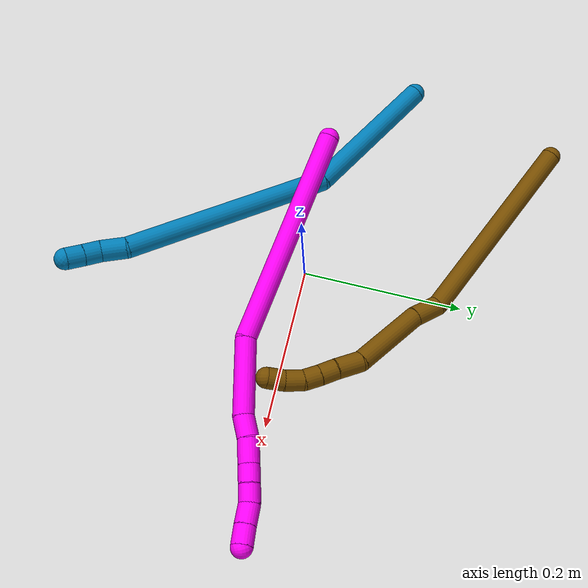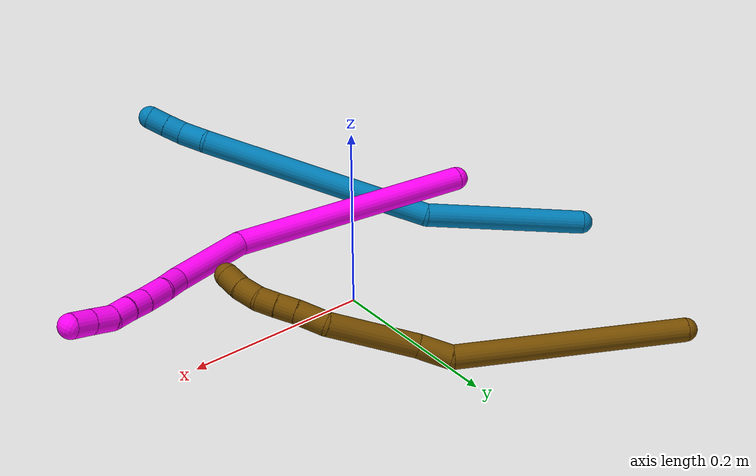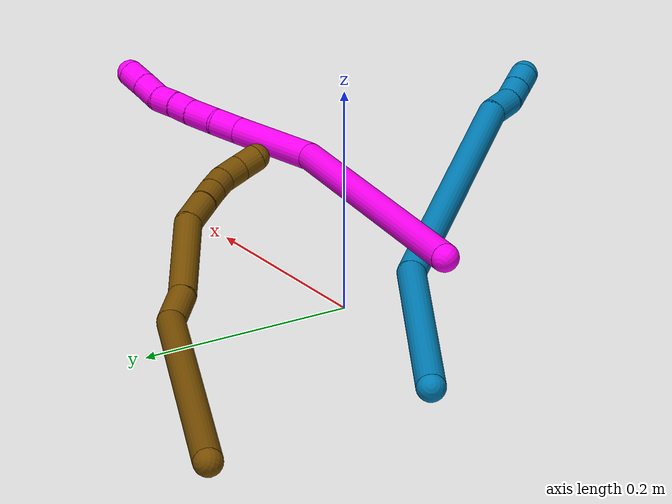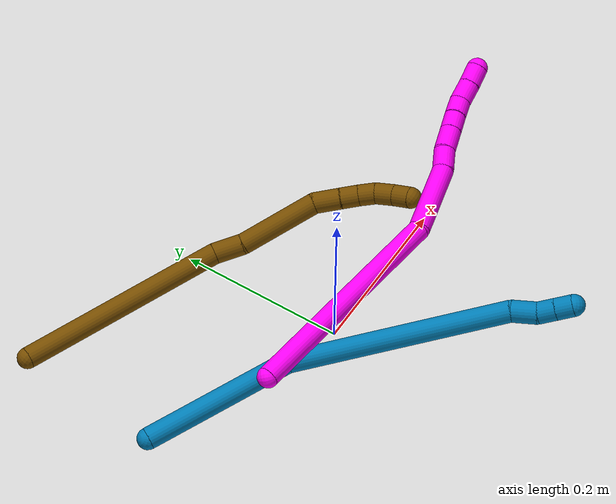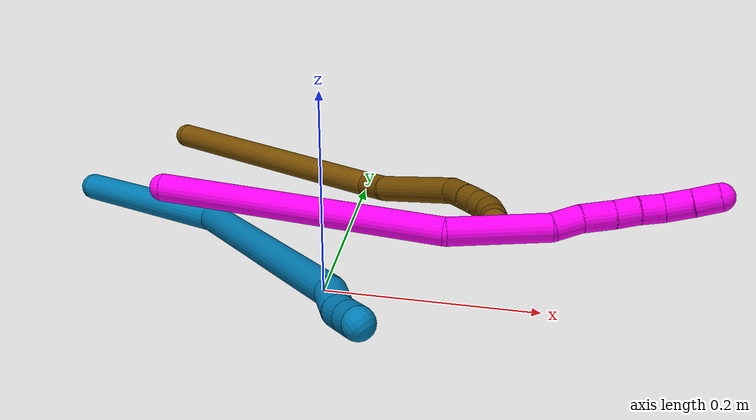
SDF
<sdf version="1.7">
 <world name="default">
  <model name="9">
   <static>0</static>
   <link name="9">
    <collision name="collision-cylinder-e_1_1_4">
     <pose>0.035838 -0.0498 0.063419 0.665681 0.418232 0.146466</pose>
     <geometry><cylinder><radius>0.0125</radius><length>0.17648</length></cylinder></geometry>
     <surface>
      <friction><ode><mu>1.16</mu><mu2>1.16</mu2><slip1>0</slip1><slip2>0</slip2></ode></friction>
      <contact><ode><kp>1e+06</kp><kd>1</kd><max_vel>0</max_vel><min_depth>0.001</min_depth></ode></contact>
     </surface>
    </collision>
    <visual name="visual-cylinder-e_1_1_4">
     <pose>0.035838 -0.0498 0.063419 0.665681 0.418232 0.146466</pose>
     <geometry><cylinder><radius>0.0125</radius><length>0.17648</length></cylinder></geometry>
     <material><ambient>0 0.490196 0.709804 1</ambient></material>
    </visual>
    <collision name="collision-cylinder-e_2_4_5">
     <pose>0.161095 -0.141953 0.205776 0.492457 0.784478 0.207192</pose>
     <geometry><cylinder><radius>0.0125</radius><length>0.253145</length></cylinder></geometry>
     <surface>
      <friction><ode><mu>1.16</mu><mu2>1.16</mu2><slip1>0</slip1><slip2>0</slip2></ode></friction>
      <contact><ode><kp>1e+06</kp><kd>1</kd><max_vel>0</max_vel><min_depth>0.001</min_depth></ode></contact>
     </surface>
    </collision>
    <visual name="visual-cylinder-e_2_4_5">
     <pose>0.161095 -0.141953 0.205776 0.492457 0.784478 0.207192</pose>
     <geometry><cylinder><radius>0.0125</radius><length>0.253145</length></cylinder></geometry>
     <material><ambient>0 0.490196 0.709804 1</ambient></material>
    </visual>
    <collision name="collision-cylinder-e_3_5_6">
     <pose>0.261885 -0.184846 0.294121 0.057186 0.878847 0.026888</pose>
     <geometry><cylinder><radius>0.0125</radius><length>0.029537</length></cylinder></geometry>
     <surface>
      <friction><ode><mu>1.16</mu><mu2>1.16</mu2><slip1>0</slip1><slip2>0</slip2></ode></friction>
      <contact><ode><kp>1e+06</kp><kd>1</kd><max_vel>0</max_vel><min_depth>0.001</min_depth></ode></contact>
     </surface>
    </collision>
    <visual name="visual-cylinder-e_3_5_6">
     <pose>0.261885 -0.184846 0.294121 0.057186 0.878847 0.026888</pose>
     <geometry><cylinder><radius>0.0125</radius><length>0.029537</length></cylinder></geometry>
     <material><ambient>0 0.490196 0.709804 1</ambient></material>
    </visual>
    <collision name="collision-cylinder-e_4_6_7">
     <pose>0.281253 -0.188642 0.309024 0.535181 0.896753 0.262264</pose>
     <geometry><cylinder><radius>0.0125</radius><length>0.02047</length></cylinder></geometry>
     <surface>
      <friction><ode><mu>1.16</mu><mu2>1.16</mu2><slip1>0</slip1><slip2>0</slip2></ode></friction>
      <contact><ode><kp>1e+06</kp><kd>1</kd><max_vel>0</max_vel><min_depth>0.001</min_depth></ode></contact>
     </surface>
    </collision>
    <visual name="visual-cylinder-e_4_6_7">
     <pose>0.281253 -0.188642 0.309024 0.535181 0.896753 0.262264</pose>
     <geometry><cylinder><radius>0.0125</radius><length>0.02047</length></cylinder></geometry>
     <material><ambient>0 0.490196 0.709804 1</ambient></material>
    </visual>
    <collision name="collision-cylinder-e_5_7_2">
     <pose>0.297365 -0.195121 0.319759 0.551082 0.922204 0.27911</pose>
     <geometry><cylinder><radius>0.0125</radius><length>0.020367</length></cylinder></geometry>
     <surface>
      <friction><ode><mu>1.16</mu><mu2>1.16</mu2><slip1>0</slip1><slip2>0</slip2></ode></friction>
      <contact><ode><kp>1e+06</kp><kd>1</kd><max_vel>0</max_vel><min_depth>0.001</min_depth></ode></contact>
     </surface>
    </collision>
    <visual name="visual-cylinder-e_5_7_2">
     <pose>0.297365 -0.195121 0.319759 0.551082 0.922204 0.27911</pose>
     <geometry><cylinder><radius>0.0125</radius><length>0.020367</length></cylinder></geometry>
     <material><ambient>0 0.490196 0.709804 1</ambient></material>
    </visual>
    <collision name="collision-sphere-2">
     <pose>0.305481 -0.198342 0.325 0 -0 0</pose>
     <geometry><sphere><radius>0.0125</radius></sphere></geometry>
     <surface>
      <friction><ode><mu>1.16</mu><mu2>1.16</mu2><slip1>0</slip1><slip2>0</slip2></ode></friction>
      <contact><ode><kp>1e+06</kp><kd>1</kd><max_vel>0</max_vel><min_depth>0.001</min_depth></ode></contact>
     </surface>
    </collision>
    <visual name="visual-sphere-2">
     <pose>0.305481 -0.198342 0.325 0 -0 0</pose>
     <geometry><sphere><radius>0.0125</radius></sphere></geometry>
     <material><ambient>0 0.490196 0.709804 1</ambient></material>
    </visual>
    <collision name="collision-sphere-7">
     <pose>0.28925 -0.1919 0.314519 0 -0 0</pose>
     <geometry><sphere><radius>0.0125</radius></sphere></geometry>
     <surface>
      <friction><ode><mu>1.16</mu><mu2>1.16</mu2><slip1>0</slip1><slip2>0</slip2></ode></friction>
      <contact><ode><kp>1e+06</kp><kd>1</kd><max_vel>0</max_vel><min_depth>0.001</min_depth></ode></contact>
     </surface>
    </collision>
    <visual name="visual-sphere-7">
     <pose>0.28925 -0.1919 0.314519 0 -0 0</pose>
     <geometry><sphere><radius>0.0125</radius></sphere></geometry>
     <material><ambient>0 0.490196 0.709804 1</ambient></material>
    </visual>
    <collision name="collision-sphere-6">
     <pose>0.273256 -0.185384 0.303529 0 -0 0</pose>
     <geometry><sphere><radius>0.0125</radius></sphere></geometry>
     <surface>
      <friction><ode><mu>1.16</mu><mu2>1.16</mu2><slip1>0</slip1><slip2>0</slip2></ode></friction>
      <contact><ode><kp>1e+06</kp><kd>1</kd><max_vel>0</max_vel><min_depth>0.001</min_depth></ode></contact>
     </surface>
    </collision>
    <visual name="visual-sphere-6">
     <pose>0.273256 -0.185384 0.303529 0 -0 0</pose>
     <geometry><sphere><radius>0.0125</radius></sphere></geometry>
     <material><ambient>0 0.490196 0.709804 1</ambient></material>
    </visual>
    <collision name="collision-sphere-5">
     <pose>0.250513 -0.184307 0.284714 0 -0 0</pose>
     <geometry><sphere><radius>0.0125</radius></sphere></geometry>
     <surface>
      <friction><ode><mu>1.16</mu><mu2>1.16</mu2><slip1>0</slip1><slip2>0</slip2></ode></friction>
      <contact><ode><kp>1e+06</kp><kd>1</kd><max_vel>0</max_vel><min_depth>0.001</min_depth></ode></contact>
     </surface>
    </collision>
    <visual name="visual-sphere-5">
     <pose>0.250513 -0.184307 0.284714 0 -0 0</pose>
     <geometry><sphere><radius>0.0125</radius></sphere></geometry>
     <material><ambient>0 0.490196 0.709804 1</ambient></material>
    </visual>
    <collision name="collision-sphere-1">
     <geometry><sphere><radius>0.0125</radius></sphere></geometry>
     <surface>
      <friction><ode><mu>1.16</mu><mu2>1.16</mu2><slip1>0</slip1><slip2>0</slip2></ode></friction>
      <contact><ode><kp>1e+06</kp><kd>1</kd><max_vel>0</max_vel><min_depth>0.001</min_depth></ode></contact>
     </surface>
    </collision>
    <visual name="visual-sphere-1">
     <geometry><sphere><radius>0.0125</radius></sphere></geometry>
     <material><ambient>0 0.490196 0.709804 1</ambient></material>
    </visual>
    <collision name="collision-sphere-4">
     <pose>0.071677 -0.099599 0.126838 0 -0 0</pose>
     <geometry><sphere><radius>0.0125</radius></sphere></geometry>
     <surface>
      <friction><ode><mu>1.16</mu><mu2>1.16</mu2><slip1>0</slip1><slip2>0</slip2></ode></friction>
      <contact><ode><kp>1e+06</kp><kd>1</kd><max_vel>0</max_vel><min_depth>0.001</min_depth></ode></contact>
     </surface>
    </collision>
    <visual name="visual-sphere-4">
     <pose>0.071677 -0.099599 0.126838 0 -0 0</pose>
     <geometry><sphere><radius>0.0125</radius></sphere></geometry>
     <material><ambient>0 0.490196 0.709804 1</ambient></material>
    </visual>
    <inertial>
     <pose>0.133308 -0.116038 0.169618 0 -0 0</pose>
     <mass>0.5</mass>
     <inertia>
      <ixx>0.001652</ixx>
      <ixy>0</ixy>
      <ixz>0</ixz>
      <iyy>0.001898</iyy>
      <iyz>0</iyz>
      <izz>-0.000411</izz>
     </inertia>
    </inertial>
   </link>
   <pose>-0.253956 0.082807 0.040582 -2.33551 -0.599141 -1.67406</pose>
  </model>
  <model name="10">
   <static>0</static>
   <link name="10">
    <collision name="collision-cylinder-e_1_1_4">
     <pose>0.10039 0.033776 0.07878 -0.405033 0.86409 -0.188793</pose>
     <geometry><cylinder><radius>0.0125</radius><length>0.26401</length></cylinder></geometry>
     <surface>
      <friction><ode><mu>1.16</mu><mu2>1.16</mu2><slip1>0</slip1><slip2>0</slip2></ode></friction>
      <contact><ode><kp>1e+06</kp><kd>1</kd><max_vel>0</max_vel><min_depth>0.001</min_depth></ode></contact>
     </surface>
    </collision>
    <visual name="visual-cylinder-e_1_1_4">
     <pose>0.10039 0.033776 0.07878 -0.405033 0.86409 -0.188793</pose>
     <geometry><cylinder><radius>0.0125</radius><length>0.26401</length></cylinder></geometry>
     <material><ambient>1 0 0.964706 1</ambient></material>
    </visual>
    <collision name="collision-cylinder-e_2_4_5">
     <pose>0.238549 0.087738 0.17132 -0.972476 0.996646 -0.560097</pose>
     <geometry><cylinder><radius>0.0125</radius><length>0.08996</length></cylinder></geometry>
     <surface>
      <friction><ode><mu>1.16</mu><mu2>1.16</mu2><slip1>0</slip1><slip2>0</slip2></ode></friction>
      <contact><ode><kp>1e+06</kp><kd>1</kd><max_vel>0</max_vel><min_depth>0.001</min_depth></ode></contact>
     </surface>
    </collision>
    <visual name="visual-cylinder-e_2_4_5">
     <pose>0.238549 0.087738 0.17132 -0.972476 0.996646 -0.560097</pose>
     <geometry><cylinder><radius>0.0125</radius><length>0.08996</length></cylinder></geometry>
     <material><ambient>1 0 0.964706 1</ambient></material>
    </visual>
    <collision name="collision-cylinder-e_3_5_6">
     <pose>0.286253 0.116479 0.186755 -1.37746 0.850633 -0.713828</pose>
     <geometry><cylinder><radius>0.0125</radius><length>0.026438</length></cylinder></geometry>
     <surface>
      <friction><ode><mu>1.16</mu><mu2>1.16</mu2><slip1>0</slip1><slip2>0</slip2></ode></friction>
      <contact><ode><kp>1e+06</kp><kd>1</kd><max_vel>0</max_vel><min_depth>0.001</min_depth></ode></contact>
     </surface>
    </collision>
    <visual name="visual-cylinder-e_3_5_6">
     <pose>0.286253 0.116479 0.186755 -1.37746 0.850633 -0.713828</pose>
     <geometry><cylinder><radius>0.0125</radius><length>0.026438</length></cylinder></geometry>
     <material><ambient>1 0 0.964706 1</ambient></material>
    </visual>
    <collision name="collision-cylinder-e_4_6_7">
     <pose>0.307979 0.132519 0.192281 -1.09559 0.950812 -0.608607</pose>
     <geometry><cylinder><radius>0.0125</radius><length>0.028972</length></cylinder></geometry>
     <surface>
      <friction><ode><mu>1.16</mu><mu2>1.16</mu2><slip1>0</slip1><slip2>0</slip2></ode></friction>
      <contact><ode><kp>1e+06</kp><kd>1</kd><max_vel>0</max_vel><min_depth>0.001</min_depth></ode></contact>
     </surface>
    </collision>
    <visual name="visual-cylinder-e_4_6_7">
     <pose>0.307979 0.132519 0.192281 -1.09559 0.950812 -0.608607</pose>
     <geometry><cylinder><radius>0.0125</radius><length>0.028972</length></cylinder></geometry>
     <material><ambient>1 0 0.964706 1</ambient></material>
    </visual>
    <collision name="collision-cylinder-e_5_7_8">
     <pose>0.328001 0.145935 0.199193 -1.0944 0.889363 -0.565105</pose>
     <geometry><cylinder><radius>0.0125</radius><length>0.021196</length></cylinder></geometry>
     <surface>
      <friction><ode><mu>1.16</mu><mu2>1.16</mu2><slip1>0</slip1><slip2>0</slip2></ode></friction>
      <contact><ode><kp>1e+06</kp><kd>1</kd><max_vel>0</max_vel><min_depth>0.001</min_depth></ode></contact>
     </surface>
    </collision>
    <visual name="visual-cylinder-e_5_7_8">
     <pose>0.328001 0.145935 0.199193 -1.0944 0.889363 -0.565105</pose>
     <geometry><cylinder><radius>0.0125</radius><length>0.021196</length></cylinder></geometry>
     <material><ambient>1 0 0.964706 1</ambient></material>
    </visual>
    <collision name="collision-cylinder-e_6_8_9">
     <pose>0.345165 0.157283 0.20533 -1.05427 0.961968 -0.589813</pose>
     <geometry><cylinder><radius>0.0125</radius><length>0.021779</length></cylinder></geometry>
     <surface>
      <friction><ode><mu>1.16</mu><mu2>1.16</mu2><slip1>0</slip1><slip2>0</slip2></ode></friction>
      <contact><ode><kp>1e+06</kp><kd>1</kd><max_vel>0</max_vel><min_depth>0.001</min_depth></ode></contact>
     </surface>
    </collision>
    <visual name="visual-cylinder-e_6_8_9">
     <pose>0.345165 0.157283 0.20533 -1.05427 0.961968 -0.589813</pose>
     <geometry><cylinder><radius>0.0125</radius><length>0.021779</length></cylinder></geometry>
     <material><ambient>1 0 0.964706 1</ambient></material>
    </visual>
    <collision name="collision-cylinder-e_7_9_10">
     <pose>0.362258 0.169533 0.214658 -0.829846 0.72218 -0.329686</pose>
     <geometry><cylinder><radius>0.0125</radius><length>0.02469</length></cylinder></geometry>
     <surface>
      <friction><ode><mu>1.16</mu><mu2>1.16</mu2><slip1>0</slip1><slip2>0</slip2></ode></friction>
      <contact><ode><kp>1e+06</kp><kd>1</kd><max_vel>0</max_vel><min_depth>0.001</min_depth></ode></contact>
     </surface>
    </collision>
    <visual name="visual-cylinder-e_7_9_10">
     <pose>0.362258 0.169533 0.214658 -0.829846 0.72218 -0.329686</pose>
     <geometry><cylinder><radius>0.0125</radius><length>0.02469</length></cylinder></geometry>
     <material><ambient>1 0 0.964706 1</ambient></material>
    </visual>
    <collision name="collision-cylinder-e_8_10_2">
     <pose>0.378018 0.183067 0.226304 -0.892986 0.7237 -0.358529</pose>
     <geometry><cylinder><radius>0.0125</radius><length>0.022955</length></cylinder></geometry>
     <surface>
      <friction><ode><mu>1.16</mu><mu2>1.16</mu2><slip1>0</slip1><slip2>0</slip2></ode></friction>
      <contact><ode><kp>1e+06</kp><kd>1</kd><max_vel>0</max_vel><min_depth>0.001</min_depth></ode></contact>
     </surface>
    </collision>
    <visual name="visual-cylinder-e_8_10_2">
     <pose>0.378018 0.183067 0.226304 -0.892986 0.7237 -0.358529</pose>
     <geometry><cylinder><radius>0.0125</radius><length>0.022955</length></cylinder></geometry>
     <material><ambient>1 0 0.964706 1</ambient></material>
    </visual>
    <collision name="collision-sphere-2">
     <pose>0.385618 0.189767 0.231698 0 -0 0</pose>
     <geometry><sphere><radius>0.0125</radius></sphere></geometry>
     <surface>
      <friction><ode><mu>1.16</mu><mu2>1.16</mu2><slip1>0</slip1><slip2>0</slip2></ode></friction>
      <contact><ode><kp>1e+06</kp><kd>1</kd><max_vel>0</max_vel><min_depth>0.001</min_depth></ode></contact>
     </surface>
    </collision>
    <visual name="visual-sphere-2">
     <pose>0.385618 0.189767 0.231698 0 -0 0</pose>
     <geometry><sphere><radius>0.0125</radius></sphere></geometry>
     <material><ambient>1 0 0.964706 1</ambient></material>
    </visual>
    <collision name="collision-sphere-10">
     <pose>0.370418 0.176367 0.220911 0 -0 0</pose>
     <geometry><sphere><radius>0.0125</radius></sphere></geometry>
     <surface>
      <friction><ode><mu>1.16</mu><mu2>1.16</mu2><slip1>0</slip1><slip2>0</slip2></ode></friction>
      <contact><ode><kp>1e+06</kp><kd>1</kd><max_vel>0</max_vel><min_depth>0.001</min_depth></ode></contact>
     </surface>
    </collision>
    <visual name="visual-sphere-10">
     <pose>0.370418 0.176367 0.220911 0 -0 0</pose>
     <geometry><sphere><radius>0.0125</radius></sphere></geometry>
     <material><ambient>1 0 0.964706 1</ambient></material>
    </visual>
    <collision name="collision-sphere-9">
     <pose>0.354098 0.162698 0.208406 0 -0 0</pose>
     <geometry><sphere><radius>0.0125</radius></sphere></geometry>
     <surface>
      <friction><ode><mu>1.16</mu><mu2>1.16</mu2><slip1>0</slip1><slip2>0</slip2></ode></friction>
      <contact><ode><kp>1e+06</kp><kd>1</kd><max_vel>0</max_vel><min_depth>0.001</min_depth></ode></contact>
     </surface>
    </collision>
    <visual name="visual-sphere-9">
     <pose>0.354098 0.162698 0.208406 0 -0 0</pose>
     <geometry><sphere><radius>0.0125</radius></sphere></geometry>
     <material><ambient>1 0 0.964706 1</ambient></material>
    </visual>
    <collision name="collision-sphere-4">
     <pose>0.200781 0.067552 0.15756 0 -0 0</pose>
     <geometry><sphere><radius>0.0125</radius></sphere></geometry>
     <surface>
      <friction><ode><mu>1.16</mu><mu2>1.16</mu2><slip1>0</slip1><slip2>0</slip2></ode></friction>
      <contact><ode><kp>1e+06</kp><kd>1</kd><max_vel>0</max_vel><min_depth>0.001</min_depth></ode></contact>
     </surface>
    </collision>
    <visual name="visual-sphere-4">
     <pose>0.200781 0.067552 0.15756 0 -0 0</pose>
     <geometry><sphere><radius>0.0125</radius></sphere></geometry>
     <material><ambient>1 0 0.964706 1</ambient></material>
    </visual>
    <collision name="collision-sphere-1">
     <geometry><sphere><radius>0.0125</radius></sphere></geometry>
     <surface>
      <friction><ode><mu>1.16</mu><mu2>1.16</mu2><slip1>0</slip1><slip2>0</slip2></ode></friction>
      <contact><ode><kp>1e+06</kp><kd>1</kd><max_vel>0</max_vel><min_depth>0.001</min_depth></ode></contact>
     </surface>
    </collision>
    <visual name="visual-sphere-1">
     <geometry><sphere><radius>0.0125</radius></sphere></geometry>
     <material><ambient>1 0 0.964706 1</ambient></material>
    </visual>
    <collision name="collision-sphere-8">
     <pose>0.336232 0.151868 0.202254 0 -0 0</pose>
     <geometry><sphere><radius>0.0125</radius></sphere></geometry>
     <surface>
      <friction><ode><mu>1.16</mu><mu2>1.16</mu2><slip1>0</slip1><slip2>0</slip2></ode></friction>
      <contact><ode><kp>1e+06</kp><kd>1</kd><max_vel>0</max_vel><min_depth>0.001</min_depth></ode></contact>
     </surface>
    </collision>
    <visual name="visual-sphere-8">
     <pose>0.336232 0.151868 0.202254 0 -0 0</pose>
     <geometry><sphere><radius>0.0125</radius></sphere></geometry>
     <material><ambient>1 0 0.964706 1</ambient></material>
    </visual>
    <collision name="collision-sphere-5">
     <pose>0.276316 0.107924 0.18508 0 -0 0</pose>
     <geometry><sphere><radius>0.0125</radius></sphere></geometry>
     <surface>
      <friction><ode><mu>1.16</mu><mu2>1.16</mu2><slip1>0</slip1><slip2>0</slip2></ode></friction>
      <contact><ode><kp>1e+06</kp><kd>1</kd><max_vel>0</max_vel><min_depth>0.001</min_depth></ode></contact>
     </surface>
    </collision>
    <visual name="visual-sphere-5">
     <pose>0.276316 0.107924 0.18508 0 -0 0</pose>
     <geometry><sphere><radius>0.0125</radius></sphere></geometry>
     <material><ambient>1 0 0.964706 1</ambient></material>
    </visual>
    <collision name="collision-sphere-6">
     <pose>0.296189 0.125034 0.18843 0 -0 0</pose>
     <geometry><sphere><radius>0.0125</radius></sphere></geometry>
     <surface>
      <friction><ode><mu>1.16</mu><mu2>1.16</mu2><slip1>0</slip1><slip2>0</slip2></ode></friction>
      <contact><ode><kp>1e+06</kp><kd>1</kd><max_vel>0</max_vel><min_depth>0.001</min_depth></ode></contact>
     </surface>
    </collision>
    <visual name="visual-sphere-6">
     <pose>0.296189 0.125034 0.18843 0 -0 0</pose>
     <geometry><sphere><radius>0.0125</radius></sphere></geometry>
     <material><ambient>1 0 0.964706 1</ambient></material>
    </visual>
    <collision name="collision-sphere-7">
     <pose>0.31977 0.140003 0.196132 0 -0 0</pose>
     <geometry><sphere><radius>0.0125</radius></sphere></geometry>
     <surface>
      <friction><ode><mu>1.16</mu><mu2>1.16</mu2><slip1>0</slip1><slip2>0</slip2></ode></friction>
      <contact><ode><kp>1e+06</kp><kd>1</kd><max_vel>0</max_vel><min_depth>0.001</min_depth></ode></contact>
     </surface>
    </collision>
    <visual name="visual-sphere-7">
     <pose>0.31977 0.140003 0.196132 0 -0 0</pose>
     <geometry><sphere><radius>0.0125</radius></sphere></geometry>
     <material><ambient>1 0 0.964706 1</ambient></material>
    </visual>
    <inertial>
     <pose>0.193092 0.077271 0.131815 0 -0 0</pose>
     <mass>0.5</mass>
     <inertia>
      <ixx>0.000841</ixx>
      <ixy>0</ixy>
      <ixz>0</ixz>
      <iyy>0.001349</iyy>
      <iyz>0</iyz>
      <izz>-0.001651</izz>
     </inertia>
    </inertial>
   </link>
   <pose>-0.145624 -0.00452 0.09604 1.17395 0.54281 0.337799</pose>
  </model>
  <model name="12">
   <static>0</static>
   <link name="12">
    <collision name="collision-cylinder-e_1_1_4">
     <pose>0.056733 -0.099245 0.053125 1.07932 0.466827 0.282903</pose>
     <geometry><cylinder><radius>0.0125</radius><length>0.252114</length></cylinder></geometry>
     <surface>
      <friction><ode><mu>1.16</mu><mu2>1.16</mu2><slip1>0</slip1><slip2>0</slip2></ode></friction>
      <contact><ode><kp>1e+06</kp><kd>1</kd><max_vel>0</max_vel><min_depth>0.001</min_depth></ode></contact>
     </surface>
    </collision>
    <visual name="visual-cylinder-e_1_1_4">
     <pose>0.056733 -0.099245 0.053125 1.07932 0.466827 0.282903</pose>
     <geometry><cylinder><radius>0.0125</radius><length>0.252114</length></cylinder></geometry>
     <material><ambient>0.466667 0.301961 0 1</ambient></material>
    </visual>
    <collision name="collision-cylinder-e_2_4_5">
     <pose>0.126575 -0.206198 0.115766 0.680779 0.819434 0.305241</pose>
     <geometry><cylinder><radius>0.0125</radius><length>0.03588</length></cylinder></geometry>
     <surface>
      <friction><ode><mu>1.16</mu><mu2>1.16</mu2><slip1>0</slip1><slip2>0</slip2></ode></friction>
      <contact><ode><kp>1e+06</kp><kd>1</kd><max_vel>0</max_vel><min_depth>0.001</min_depth></ode></contact>
     </surface>
    </collision>
    <visual name="visual-cylinder-e_2_4_5">
     <pose>0.126575 -0.206198 0.115766 0.680779 0.819434 0.305241</pose>
     <geometry><cylinder><radius>0.0125</radius><length>0.03588</length></cylinder></geometry>
     <material><ambient>0.466667 0.301961 0 1</ambient></material>
    </visual>
    <collision name="collision-cylinder-e_3_5_6">
     <pose>0.173858 -0.2419 0.143238 1.00049 0.798971 0.453613</pose>
     <geometry><cylinder><radius>0.0125</radius><length>0.095371</length></cylinder></geometry>
     <surface>
      <friction><ode><mu>1.16</mu><mu2>1.16</mu2><slip1>0</slip1><slip2>0</slip2></ode></friction>
      <contact><ode><kp>1e+06</kp><kd>1</kd><max_vel>0</max_vel><min_depth>0.001</min_depth></ode></contact>
     </surface>
    </collision>
    <visual name="visual-cylinder-e_3_5_6">
     <pose>0.173858 -0.2419 0.143238 1.00049 0.798971 0.453613</pose>
     <geometry><cylinder><radius>0.0125</radius><length>0.095371</length></cylinder></geometry>
     <material><ambient>0.466667 0.301961 0 1</ambient></material>
    </visual>
    <collision name="collision-cylinder-e_4_6_7">
     <pose>0.21953 -0.274715 0.171234 0.447574 0.801344 0.192221</pose>
     <geometry><cylinder><radius>0.0125</radius><length>0.032017</length></cylinder></geometry>
     <surface>
      <friction><ode><mu>1.16</mu><mu2>1.16</mu2><slip1>0</slip1><slip2>0</slip2></ode></friction>
      <contact><ode><kp>1e+06</kp><kd>1</kd><max_vel>0</max_vel><min_depth>0.001</min_depth></ode></contact>
     </surface>
    </collision>
    <visual name="visual-cylinder-e_4_6_7">
     <pose>0.21953 -0.274715 0.171234 0.447574 0.801344 0.192221</pose>
     <geometry><cylinder><radius>0.0125</radius><length>0.032017</length></cylinder></geometry>
     <material><ambient>0.466667 0.301961 0 1</ambient></material>
    </visual>
    <collision name="collision-cylinder-e_5_7_8">
     <pose>0.238021 -0.283272 0.188097 0.501157 0.732218 0.195639</pose>
     <geometry><cylinder><radius>0.0125</radius><length>0.020917</length></cylinder></geometry>
     <surface>
      <friction><ode><mu>1.16</mu><mu2>1.16</mu2><slip1>0</slip1><slip2>0</slip2></ode></friction>
      <contact><ode><kp>1e+06</kp><kd>1</kd><max_vel>0</max_vel><min_depth>0.001</min_depth></ode></contact>
     </surface>
    </collision>
    <visual name="visual-cylinder-e_5_7_8">
     <pose>0.238021 -0.283272 0.188097 0.501157 0.732218 0.195639</pose>
     <geometry><cylinder><radius>0.0125</radius><length>0.020917</length></cylinder></geometry>
     <material><ambient>0.466667 0.301961 0 1</ambient></material>
    </visual>
    <collision name="collision-cylinder-e_6_8_9">
     <pose>0.251754 -0.29008 0.201673 0.426807 0.737462 0.16708</pose>
     <geometry><cylinder><radius>0.0125</radius><length>0.020049</length></cylinder></geometry>
     <surface>
      <friction><ode><mu>1.16</mu><mu2>1.16</mu2><slip1>0</slip1><slip2>0</slip2></ode></friction>
      <contact><ode><kp>1e+06</kp><kd>1</kd><max_vel>0</max_vel><min_depth>0.001</min_depth></ode></contact>
     </surface>
    </collision>
    <visual name="visual-cylinder-e_6_8_9">
     <pose>0.251754 -0.29008 0.201673 0.426807 0.737462 0.16708</pose>
     <geometry><cylinder><radius>0.0125</radius><length>0.020049</length></cylinder></geometry>
     <material><ambient>0.466667 0.301961 0 1</ambient></material>
    </visual>
    <collision name="collision-cylinder-e_7_9_10">
     <pose>0.266045 -0.293505 0.21695 0.041327 0.724589 0.015666</pose>
     <geometry><cylinder><radius>0.0125</radius><length>0.022783</length></cylinder></geometry>
     <surface>
      <friction><ode><mu>1.16</mu><mu2>1.16</mu2><slip1>0</slip1><slip2>0</slip2></ode></friction>
      <contact><ode><kp>1e+06</kp><kd>1</kd><max_vel>0</max_vel><min_depth>0.001</min_depth></ode></contact>
     </surface>
    </collision>
    <visual name="visual-cylinder-e_7_9_10">
     <pose>0.266045 -0.293505 0.21695 0.041327 0.724589 0.015666</pose>
     <geometry><cylinder><radius>0.0125</radius><length>0.022783</length></cylinder></geometry>
     <material><ambient>0.466667 0.301961 0 1</ambient></material>
    </visual>
    <collision name="collision-cylinder-e_8_10_2">
     <pose>0.281036 -0.292451 0.23265 -0.193469 0.793906 -0.081313</pose>
     <geometry><cylinder><radius>0.0125</radius><length>0.020868</length></cylinder></geometry>
     <surface>
      <friction><ode><mu>1.16</mu><mu2>1.16</mu2><slip1>0</slip1><slip2>0</slip2></ode></friction>
      <contact><ode><kp>1e+06</kp><kd>1</kd><max_vel>0</max_vel><min_depth>0.001</min_depth></ode></contact>
     </surface>
    </collision>
    <visual name="visual-cylinder-e_8_10_2">
     <pose>0.281036 -0.292451 0.23265 -0.193469 0.793906 -0.081313</pose>
     <geometry><cylinder><radius>0.0125</radius><length>0.020868</length></cylinder></geometry>
     <material><ambient>0.466667 0.301961 0 1</ambient></material>
    </visual>
    <collision name="collision-sphere-2">
     <pose>0.288476 -0.291044 0.239829 0 -0 0</pose>
     <geometry><sphere><radius>0.0125</radius></sphere></geometry>
     <surface>
      <friction><ode><mu>1.16</mu><mu2>1.16</mu2><slip1>0</slip1><slip2>0</slip2></ode></friction>
      <contact><ode><kp>1e+06</kp><kd>1</kd><max_vel>0</max_vel><min_depth>0.001</min_depth></ode></contact>
     </surface>
    </collision>
    <visual name="visual-sphere-2">
     <pose>0.288476 -0.291044 0.239829 0 -0 0</pose>
     <geometry><sphere><radius>0.0125</radius></sphere></geometry>
     <material><ambient>0.466667 0.301961 0 1</ambient></material>
    </visual>
    <collision name="collision-sphere-10">
     <pose>0.273596 -0.293857 0.225472 0 -0 0</pose>
     <geometry><sphere><radius>0.0125</radius></sphere></geometry>
     <surface>
      <friction><ode><mu>1.16</mu><mu2>1.16</mu2><slip1>0</slip1><slip2>0</slip2></ode></friction>
      <contact><ode><kp>1e+06</kp><kd>1</kd><max_vel>0</max_vel><min_depth>0.001</min_depth></ode></contact>
     </surface>
    </collision>
    <visual name="visual-sphere-10">
     <pose>0.273596 -0.293857 0.225472 0 -0 0</pose>
     <geometry><sphere><radius>0.0125</radius></sphere></geometry>
     <material><ambient>0.466667 0.301961 0 1</ambient></material>
    </visual>
    <collision name="collision-sphere-9">
     <pose>0.258494 -0.293152 0.208427 0 -0 0</pose>
     <geometry><sphere><radius>0.0125</radius></sphere></geometry>
     <surface>
      <friction><ode><mu>1.16</mu><mu2>1.16</mu2><slip1>0</slip1><slip2>0</slip2></ode></friction>
      <contact><ode><kp>1e+06</kp><kd>1</kd><max_vel>0</max_vel><min_depth>0.001</min_depth></ode></contact>
     </surface>
    </collision>
    <visual name="visual-sphere-9">
     <pose>0.258494 -0.293152 0.208427 0 -0 0</pose>
     <geometry><sphere><radius>0.0125</radius></sphere></geometry>
     <material><ambient>0.466667 0.301961 0 1</ambient></material>
    </visual>
    <collision name="collision-sphere-4">
     <pose>0.113465 -0.19849 0.106249 0 -0 0</pose>
     <geometry><sphere><radius>0.0125</radius></sphere></geometry>
     <surface>
      <friction><ode><mu>1.16</mu><mu2>1.16</mu2><slip1>0</slip1><slip2>0</slip2></ode></friction>
      <contact><ode><kp>1e+06</kp><kd>1</kd><max_vel>0</max_vel><min_depth>0.001</min_depth></ode></contact>
     </surface>
    </collision>
    <visual name="visual-sphere-4">
     <pose>0.113465 -0.19849 0.106249 0 -0 0</pose>
     <geometry><sphere><radius>0.0125</radius></sphere></geometry>
     <material><ambient>0.466667 0.301961 0 1</ambient></material>
    </visual>
    <collision name="collision-sphere-1">
     <geometry><sphere><radius>0.0125</radius></sphere></geometry>
     <surface>
      <friction><ode><mu>1.16</mu><mu2>1.16</mu2><slip1>0</slip1><slip2>0</slip2></ode></friction>
      <contact><ode><kp>1e+06</kp><kd>1</kd><max_vel>0</max_vel><min_depth>0.001</min_depth></ode></contact>
     </surface>
    </collision>
    <visual name="visual-sphere-1">
     <geometry><sphere><radius>0.0125</radius></sphere></geometry>
     <material><ambient>0.466667 0.301961 0 1</ambient></material>
    </visual>
    <collision name="collision-sphere-8">
     <pose>0.245013 -0.287009 0.194918 0 -0 0</pose>
     <geometry><sphere><radius>0.0125</radius></sphere></geometry>
     <surface>
      <friction><ode><mu>1.16</mu><mu2>1.16</mu2><slip1>0</slip1><slip2>0</slip2></ode></friction>
      <contact><ode><kp>1e+06</kp><kd>1</kd><max_vel>0</max_vel><min_depth>0.001</min_depth></ode></contact>
     </surface>
    </collision>
    <visual name="visual-sphere-8">
     <pose>0.245013 -0.287009 0.194918 0 -0 0</pose>
     <geometry><sphere><radius>0.0125</radius></sphere></geometry>
     <material><ambient>0.466667 0.301961 0 1</ambient></material>
    </visual>
    <collision name="collision-sphere-5">
     <pose>0.139685 -0.213906 0.125283 0 -0 0</pose>
     <geometry><sphere><radius>0.0125</radius></sphere></geometry>
     <surface>
      <friction><ode><mu>1.16</mu><mu2>1.16</mu2><slip1>0</slip1><slip2>0</slip2></ode></friction>
      <contact><ode><kp>1e+06</kp><kd>1</kd><max_vel>0</max_vel><min_depth>0.001</min_depth></ode></contact>
     </surface>
    </collision>
    <visual name="visual-sphere-5">
     <pose>0.139685 -0.213906 0.125283 0 -0 0</pose>
     <geometry><sphere><radius>0.0125</radius></sphere></geometry>
     <material><ambient>0.466667 0.301961 0 1</ambient></material>
    </visual>
    <collision name="collision-sphere-6">
     <pose>0.208032 -0.269895 0.161194 0 -0 0</pose>
     <geometry><sphere><radius>0.0125</radius></sphere></geometry>
     <surface>
      <friction><ode><mu>1.16</mu><mu2>1.16</mu2><slip1>0</slip1><slip2>0</slip2></ode></friction>
      <contact><ode><kp>1e+06</kp><kd>1</kd><max_vel>0</max_vel><min_depth>0.001</min_depth></ode></contact>
     </surface>
    </collision>
    <visual name="visual-sphere-6">
     <pose>0.208032 -0.269895 0.161194 0 -0 0</pose>
     <geometry><sphere><radius>0.0125</radius></sphere></geometry>
     <material><ambient>0.466667 0.301961 0 1</ambient></material>
    </visual>
    <collision name="collision-sphere-7">
     <pose>0.231029 -0.279535 0.181275 0 -0 0</pose>
     <geometry><sphere><radius>0.0125</radius></sphere></geometry>
     <surface>
      <friction><ode><mu>1.16</mu><mu2>1.16</mu2><slip1>0</slip1><slip2>0</slip2></ode></friction>
      <contact><ode><kp>1e+06</kp><kd>1</kd><max_vel>0</max_vel><min_depth>0.001</min_depth></ode></contact>
     </surface>
    </collision>
    <visual name="visual-sphere-7">
     <pose>0.231029 -0.279535 0.181275 0 -0 0</pose>
     <geometry><sphere><radius>0.0125</radius></sphere></geometry>
     <material><ambient>0.466667 0.301961 0 1</ambient></material>
    </visual>
    <inertial>
     <pose>0.128813 -0.177632 0.108932 0 -0 0</pose>
     <mass>0.5</mass>
     <inertia>
      <ixx>0.001595</ixx>
      <ixy>0</ixy>
      <ixz>0</ixz>
      <iyy>0.001168</iyy>
      <iyz>0</iyz>
      <izz>0.000456</izz>
     </inertia>
    </inertial>
   </link>
   <pose>-0.222906 0.271578 0.011497 2.8214 -1.02401 -1.07635</pose>
  </model>
 </world>
</sdf>
